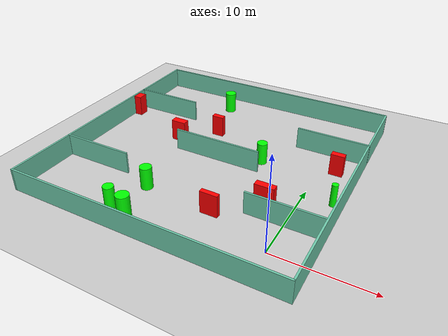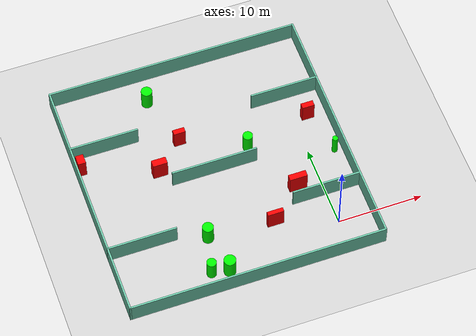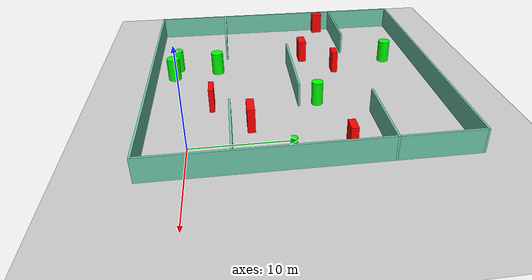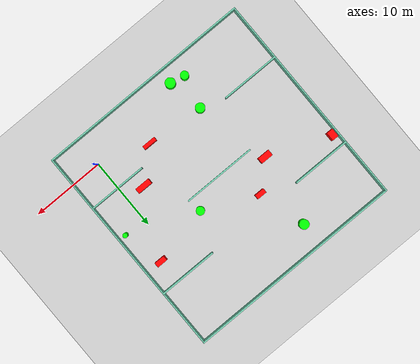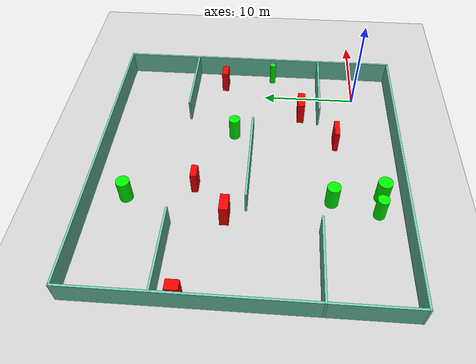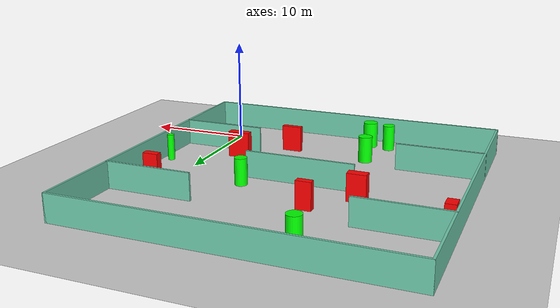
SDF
<sdf version="1.7">
 <world name="default">
  <light name="sun" type="directional">
   <pose>0 0 10 0 -0 0</pose>
   <diffuse>0.8 0.8 0.8 1</diffuse>
   <specular>0.2 0.2 0.2 1</specular>
   <attenuation>
    <range>1000</range>
    <constant>0.9</constant>
    <linear>0.01</linear>
    <quadratic>0.001</quadratic>
   </attenuation>
   <direction>-0.5 0.1 -0.9</direction>
   <spot><inner_angle>0</inner_angle><outer_angle>0</outer_angle><falloff>0</falloff></spot>
  </light>
  <model name="ground_plane">
   <static>1</static>
   <link name="link">
    <collision name="collision">
     <geometry><plane><normal>0 0 1</normal><size>100 100</size></plane></geometry>
     <surface>
      <contact><collide_bitmask>65535</collide_bitmask></contact>
      <friction><ode><mu>100</mu><mu2>50</mu2></ode></friction>
     </surface>
    </collision>
    <visual name="visual">
     <cast_shadows>0</cast_shadows>
     <geometry><plane><normal>0 0 1</normal><size>100 100</size></plane></geometry>
     <material>
      <script><uri>file://media/materials/scripts/gazebo.material</uri><name>Gazebo/Grey</name></script>
     </material>
    </visual>
   </link>
  </model>
  <gravity>0 0 -9.8</gravity>
  <magnetic_field>6e-06 2.3e-05 -4.2e-05</magnetic_field>
  <atmosphere type="adiabatic"/>
  <physics type="ode">
   <max_step_size>0.001</max_step_size>
   <real_time_factor>1</real_time_factor>
   <real_time_update_rate>1000</real_time_update_rate>
  </physics>
  <scene><ambient>0.4 0.4 0.4 1</ambient><background>0.7 0.7 0.7 1</background><shadows>1</shadows></scene>
  <spherical_coordinates>
   <surface_model>EARTH_WGS84</surface_model>
   <latitude_deg>0</latitude_deg>
   <longitude_deg>0</longitude_deg>
   <elevation>0</elevation>
   <heading_deg>0</heading_deg>
  </spherical_coordinates>
  <model name="my_base_walls">
   <link name="Wall_10">
    <collision name="Wall_10_Collision">
     <geometry><box><size>8.2 0.2 2.5</size></box></geometry>
     <pose>0 0 1.25 0 -0 0</pose>
    </collision>
    <visual name="Wall_10_Visual">
     <pose>0 0 1.25 0 -0 0</pose>
     <geometry><box><size>8.2 0.2 2.5</size></box></geometry>
     <material>
      <script><uri>file://media/materials/scripts/gazebo.material</uri><name>Gazebo/Grey</name></script>
      <ambient>0.435294 0.796078 0.67451 1</ambient>
     </material>
     <meta><layer>0</layer></meta>
    </visual>
    <pose>-11 -7 0 0 -0 0</pose>
   </link>
   <link name="Wall_12">
    <collision name="Wall_12_Collision">
     <geometry><box><size>8.2 0.2 2.5</size></box></geometry>
     <pose>0 0 1.25 0 -0 0</pose>
    </collision>
    <visual name="Wall_12_Visual">
     <pose>0 0 1.25 0 -0 0</pose>
     <geometry><box><size>8.2 0.2 2.5</size></box></geometry>
     <material>
      <script><uri>file://media/materials/scripts/gazebo.material</uri><name>Gazebo/Grey</name></script>
      <ambient>0.435294 0.796078 0.67451 1</ambient>
     </material>
     <meta><layer>0</layer></meta>
    </visual>
    <pose>-11 7 0 0 -0 0</pose>
   </link>
   <link name="Wall_14">
    <collision name="Wall_14_Collision">
     <geometry><box><size>8.2 0.2 2.5</size></box></geometry>
     <pose>0 0 1.25 0 -0 0</pose>
    </collision>
    <visual name="Wall_14_Visual">
     <pose>0 0 1.25 0 -0 0</pose>
     <geometry><box><size>8.2 0.2 2.5</size></box></geometry>
     <material>
      <script><uri>file://media/materials/scripts/gazebo.material</uri><name>Gazebo/Grey</name></script>
      <ambient>0.435294 0.796078 0.67451 1</ambient>
     </material>
     <meta><layer>0</layer></meta>
    </visual>
    <pose>11 7 0 0 -0 3.14159</pose>
   </link>
   <link name="Wall_16">
    <collision name="Wall_16_Collision">
     <geometry><box><size>10.2 0.2 2.5</size></box></geometry>
     <pose>0 0 1.25 0 -0 0</pose>
    </collision>
    <visual name="Wall_16_Visual">
     <pose>0 0 1.25 0 -0 0</pose>
     <geometry><box><size>10.2 0.2 2.5</size></box></geometry>
     <material>
      <script><uri>file://media/materials/scripts/gazebo.material</uri><name>Gazebo/Grey</name></script>
      <ambient>0.435294 0.796078 0.67451 1</ambient>
     </material>
     <meta><layer>0</layer></meta>
    </visual>
    <pose>0 0 0 0 -0 3.14159</pose>
   </link>
   <link name="Wall_2">
    <collision name="Wall_2_Collision">
     <geometry><box><size>30.2 0.2 2.5</size></box></geometry>
     <pose>0 0 1.25 0 -0 0</pose>
    </collision>
    <visual name="Wall_2_Visual">
     <pose>0 0 1.25 0 -0 0</pose>
     <geometry><box><size>30.2 0.2 2.5</size></box></geometry>
     <material>
      <script><uri>file://media/materials/scripts/gazebo.material</uri><name>Gazebo/Grey</name></script>
      <ambient>0.435294 0.796078 0.67451 1</ambient>
     </material>
     <meta><layer>0</layer></meta>
    </visual>
    <pose>0 -15 0 0 -0 3.14159</pose>
   </link>
   <link name="Wall_3">
    <collision name="Wall_3_Collision">
     <geometry><box><size>30.2 0.2 2.5</size></box></geometry>
     <pose>0 0 1.25 0 -0 0</pose>
    </collision>
    <visual name="Wall_3_Visual">
     <pose>0 0 1.25 0 -0 0</pose>
     <geometry><box><size>30.2 0.2 2.5</size></box></geometry>
     <material>
      <script><uri>file://media/materials/scripts/gazebo.material</uri><name>Gazebo/Grey</name></script>
      <ambient>0.435294 0.796078 0.67451 1</ambient>
     </material>
     <meta><layer>0</layer></meta>
    </visual>
    <pose>-15 0 0 0 -0 1.5708</pose>
   </link>
   <link name="Wall_4">
    <collision name="Wall_4_Collision">
     <geometry><box><size>30.2 0.2 2.5</size></box></geometry>
     <pose>0 0 1.25 0 -0 0</pose>
    </collision>
    <visual name="Wall_4_Visual">
     <pose>0 0 1.25 0 -0 0</pose>
     <geometry><box><size>30.2 0.2 2.5</size></box></geometry>
     <material>
      <script><uri>file://media/materials/scripts/gazebo.material</uri><name>Gazebo/Grey</name></script>
      <ambient>0.435294 0.796078 0.67451 1</ambient>
     </material>
     <meta><layer>0</layer></meta>
    </visual>
    <pose>0 15 0 0 -0 0</pose>
   </link>
   <link name="Wall_6">
    <collision name="Wall_6_Collision">
     <geometry><box><size>30.2 0.2 2.5</size></box></geometry>
     <pose>0 0 1.25 0 -0 0</pose>
    </collision>
    <visual name="Wall_6_Visual">
     <pose>0 0 1.25 0 -0 0</pose>
     <geometry><box><size>30.2 0.2 2.5</size></box></geometry>
     <material>
      <script><uri>file://media/materials/scripts/gazebo.material</uri><name>Gazebo/Grey</name></script>
      <ambient>0.435294 0.796078 0.67451 1</ambient>
     </material>
     <meta><layer>0</layer></meta>
    </visual>
    <pose>15 0 0 0 -0 1.5708</pose>
   </link>
   <link name="Wall_8">
    <collision name="Wall_8_Collision">
     <geometry><box><size>8.2 0.2 2.5</size></box></geometry>
     <pose>0 0 1.25 0 -0 0</pose>
    </collision>
    <visual name="Wall_8_Visual">
     <pose>0 0 1.25 0 -0 0</pose>
     <geometry><box><size>8.2 0.2 2.5</size></box></geometry>
     <material>
      <script><uri>file://media/materials/scripts/gazebo.material</uri><name>Gazebo/Grey</name></script>
      <ambient>0.435294 0.796078 0.67451 1</ambient>
     </material>
     <meta><layer>0</layer></meta>
    </visual>
    <pose>11 -7 0 0 -0 3.14159</pose>
   </link>
   <static>1</static>
   <pose>-11 11 0 0 -0 0</pose>
  </model>
  <model name="cylinder1">
   <static>1</static>
   <link name="link">
    <inertial>
     <mass>1</mass>
     <inertia><ixx>0.5</ixx><ixy>0</ixy><ixz>0</ixz><iyy>0.5</iyy><iyz>0</iyz><izz>1</izz></inertia>
    </inertial>
    <collision name="collision">
     <geometry><cylinder><radius>0.651693050248279</radius><length>2.5</length></cylinder></geometry>
    </collision>
    <visual name="visual">
     <geometry><cylinder><radius>0.651693050248279</radius><length>2.5</length></cylinder></geometry>
     <material>
      <ambient>0 1 0 1</ambient>
      <diffuse>0 1 0 1</diffuse>
      <specular>0.1 0.1 0.1 1</specular>
      <emissive>0 0 0 0</emissive>
     </material>
    </visual>
   </link>
   <pose>-14.628913734034361 2.882663190983412 1.25 0 0 0</pose>
  </model>
  <model name="cylinder2">
   <static>1</static>
   <link name="link">
    <inertial>
     <mass>1</mass>
     <inertia><ixx>0.5</ixx><ixy>0</ixy><ixz>0</ixz><iyy>0.5</iyy><iyz>0</iyz><izz>1</izz></inertia>
    </inertial>
    <collision name="collision">
     <geometry><cylinder><radius>0.6995673802330262</radius><length>2.5</length></cylinder></geometry>
    </collision>
    <visual name="visual">
     <geometry><cylinder><radius>0.6995673802330262</radius><length>2.5</length></cylinder></geometry>
     <material>
      <ambient>0 1 0 1</ambient>
      <diffuse>0 1 0 1</diffuse>
      <specular>0.1 0.1 0.1 1</specular>
      <emissive>0 0 0 0</emissive>
     </material>
    </visual>
   </link>
   <pose>-13.733005618728415 -1.9505663919543181 1.25 0 0 0</pose>
  </model>
  <model name="cylinder3">
   <static>1</static>
   <link name="link">
    <inertial>
     <mass>1</mass>
     <inertia><ixx>0.5</ixx><ixy>0</ixy><ixz>0</ixz><iyy>0.5</iyy><iyz>0</iyz><izz>1</izz></inertia>
    </inertial>
    <collision name="collision">
     <geometry><cylinder><radius>0.5789817773370258</radius><length>2.5</length></cylinder></geometry>
    </collision>
    <visual name="visual">
     <geometry><cylinder><radius>0.5789817773370258</radius><length>2.5</length></cylinder></geometry>
     <material>
      <ambient>0 1 0 1</ambient>
      <diffuse>0 1 0 1</diffuse>
      <specular>0.1 0.1 0.1 1</specular>
      <emissive>0 0 0 0</emissive>
     </material>
    </visual>
   </link>
   <pose>-6.298263601126859 12.91846494071434 1.25 0 0 0</pose>
  </model>
  <model name="cylinder4">
   <static>1</static>
   <link name="link">
    <inertial>
     <mass>1</mass>
     <inertia><ixx>0.5</ixx><ixy>0</ixy><ixz>0</ixz><iyy>0.5</iyy><iyz>0</iyz><izz>1</izz></inertia>
    </inertial>
    <collision name="collision">
     <geometry><cylinder><radius>0.6549022246921097</radius><length>2.5</length></cylinder></geometry>
    </collision>
    <visual name="visual">
     <geometry><cylinder><radius>0.6549022246921097</radius><length>2.5</length></cylinder></geometry>
     <material>
      <ambient>0 1 0 1</ambient>
      <diffuse>0 1 0 1</diffuse>
      <specular>0.1 0.1 0.1 1</specular>
      <emissive>0 0 0 0</emissive>
     </material>
    </visual>
   </link>
   <pose>-15.291449251221355 22.64745849034312 1.25 0 0 0</pose>
  </model>
  <model name="cylinder5">
   <static>1</static>
   <link name="link">
    <inertial>
     <mass>1</mass>
     <inertia><ixx>0.5</ixx><ixy>0</ixy><ixz>0</ixz><iyy>0.5</iyy><iyz>0</iyz><izz>1</izz></inertia>
    </inertial>
    <collision name="collision">
     <geometry><cylinder><radius>0.32859419332419887</radius><length>2.5</length></cylinder></geometry>
    </collision>
    <visual name="visual">
     <geometry><cylinder><radius>0.32859419332419887</radius><length>2.5</length></cylinder></geometry>
     <material>
      <ambient>0 1 0 1</ambient>
      <diffuse>0 1 0 1</diffuse>
      <specular>0.1 0.1 0.1 1</specular>
      <emissive>0 0 0 0</emissive>
     </material>
    </visual>
   </link>
   <pose>3.0022943521326013 9.218145618807908 1.25 0 0 0</pose>
  </model>
  <model name="cylinder6">
   <static>1</static>
   <link name="link">
    <inertial>
     <mass>1</mass>
     <inertia><ixx>0.5</ixx><ixy>0</ixy><ixz>0</ixz><iyy>0.5</iyy><iyz>0</iyz><izz>1</izz></inertia>
    </inertial>
    <collision name="collision">
     <geometry><cylinder><radius>0.5644499816491417</radius><length>2.5</length></cylinder></geometry>
    </collision>
    <visual name="visual">
     <geometry><cylinder><radius>0.5644499816491417</radius><length>2.5</length></cylinder></geometry>
     <material>
      <ambient>0 1 0 1</ambient>
      <diffuse>0 1 0 1</diffuse>
      <specular>0.1 0.1 0.1 1</specular>
      <emissive>0 0 0 0</emissive>
     </material>
    </visual>
   </link>
   <pose>-15.74323663543935 -1.5482120016225074 1.25 0 0 0</pose>
  </model>
  <model name="box1">
   <static>1</static>
   <link name="link">
    <inertial>
     <mass>1</mass>
     <inertia><ixx>0.083</ixx><ixy>0</ixy><ixz>0</ixz><iyy>0.083</iyy><iyz>0</iyz><izz>0.083</izz></inertia>
    </inertial>
    <collision name="collision">
     <geometry><box><size>0.9255529663084254 1.1994851048751838 2.5</size></box></geometry>
    </collision>
    <visual name="visual">
     <geometry><box><size>0.9255529663084254 1.1994851048751838 2.5</size></box></geometry>
     <material>
      <ambient>1 0 0 1</ambient>
      <diffuse>1 0 0 1</diffuse>
      <specular>0.1 0.1 0.1 1</specular>
      <emissive>0 0 0 0</emissive>
     </material>
    </visual>
    <sensor name="my_contact" type="contact">
     <contact><collision>box_collision</collision><topic>__default_topic__</topic></contact>
    </sensor>
   </link>
   <pose>-25.314859603121402 16.22878480197321 1.25 0 0 0</pose>
  </model>
  <model name="box2">
   <static>1</static>
   <link name="link">
    <inertial>
     <mass>1</mass>
     <inertia><ixx>0.083</ixx><ixy>0</ixy><ixz>0</ixz><iyy>0.083</iyy><iyz>0</iyz><izz>0.083</izz></inertia>
    </inertial>
    <collision name="collision">
     <geometry><box><size>1.909848373433304 0.5142979860302549 2.5</size></box></geometry>
    </collision>
    <visual name="visual">
     <geometry><box><size>1.909848373433304 0.5142979860302549 2.5</size></box></geometry>
     <material>
      <ambient>1 0 0 1</ambient>
      <diffuse>1 0 0 1</diffuse>
      <specular>0.1 0.1 0.1 1</specular>
      <emissive>0 0 0 0</emissive>
     </material>
    </visual>
    <sensor name="my_contact" type="contact">
     <contact><collision>box_collision</collision><topic>__default_topic__</topic></contact>
    </sensor>
   </link>
   <pose>-6.836919652787513 2.243862642018552 1.25 0 0 0</pose>
  </model>
  <model name="box3">
   <static>1</static>
   <link name="link">
    <inertial>
     <mass>1</mass>
     <inertia><ixx>0.083</ixx><ixy>0</ixy><ixz>0</ixz><iyy>0.083</iyy><iyz>0</iyz><izz>0.083</izz></inertia>
    </inertial>
    <collision name="collision">
     <geometry><box><size>1.731468319817965 0.8545546854995323 2.5</size></box></geometry>
    </collision>
    <visual name="visual">
     <geometry><box><size>1.731468319817965 0.8545546854995323 2.5</size></box></geometry>
     <material>
      <ambient>1 0 0 1</ambient>
      <diffuse>1 0 0 1</diffuse>
      <specular>0.1 0.1 0.1 1</specular>
      <emissive>0 0 0 0</emissive>
     </material>
    </visual>
    <sensor name="my_contact" type="contact">
     <contact><collision>box_collision</collision><topic>__default_topic__</topic></contact>
    </sensor>
   </link>
   <pose>-16.9827312528749 12.914033786998868 1.25 0 0 0</pose>
  </model>
  <model name="box4">
   <static>1</static>
   <link name="link">
    <inertial>
     <mass>1</mass>
     <inertia><ixx>0.083</ixx><ixy>0</ixy><ixz>0</ixz><iyy>0.083</iyy><iyz>0</iyz><izz>0.083</izz></inertia>
    </inertial>
    <collision name="collision">
     <geometry><box><size>1.464838075244192 0.689021045650954 2.5</size></box></geometry>
    </collision>
    <visual name="visual">
     <geometry><box><size>1.464838075244192 0.689021045650954 2.5</size></box></geometry>
     <material>
      <ambient>1 0 0 1</ambient>
      <diffuse>1 0 0 1</diffuse>
      <specular>0.1 0.1 0.1 1</specular>
      <emissive>0 0 0 0</emissive>
     </material>
    </visual>
    <sensor name="my_contact" type="contact">
     <contact><collision>box_collision</collision><topic>__default_topic__</topic></contact>
    </sensor>
   </link>
   <pose>1.6553592687852543 14.649595258498913 1.25 0 0 0</pose>
  </model>
  <model name="box5">
   <static>1</static>
   <link name="link">
    <inertial>
     <mass>1</mass>
     <inertia><ixx>0.083</ixx><ixy>0</ixy><ixz>0</ixz><iyy>0.083</iyy><iyz>0</iyz><izz>0.083</izz></inertia>
    </inertial>
    <collision name="collision">
     <geometry><box><size>2.0932441286526613 0.7456152145330422 2.5</size></box></geometry>
    </collision>
    <visual name="visual">
     <geometry><box><size>2.0932441286526613 0.7456152145330422 2.5</size></box></geometry>
     <material>
      <ambient>1 0 0 1</ambient>
      <diffuse>1 0 0 1</diffuse>
      <specular>0.1 0.1 0.1 1</specular>
      <emissive>0 0 0 0</emissive>
     </material>
    </visual>
    <sensor name="my_contact" type="contact">
     <contact><collision>box_collision</collision><topic>__default_topic__</topic></contact>
    </sensor>
   </link>
   <pose>-2.7915382143893197 5.919538873053911 1.25 0 0 0</pose>
  </model>
  <model name="box6">
   <static>1</static>
   <link name="link">
    <inertial>
     <mass>1</mass>
     <inertia><ixx>0.083</ixx><ixy>0</ixy><ixz>0</ixz><iyy>0.083</iyy><iyz>0</iyz><izz>0.083</izz></inertia>
    </inertial>
    <collision name="collision">
     <geometry><box><size>1.3818101785479473 0.6347011952322288 2.5</size></box></geometry>
    </collision>
    <visual name="visual">
     <geometry><box><size>1.3818101785479473 0.6347011952322288 2.5</size></box></geometry>
     <material>
      <ambient>1 0 0 1</ambient>
      <diffuse>1 0 0 1</diffuse>
      <specular>0.1 0.1 0.1 1</specular>
      <emissive>0 0 0 0</emissive>
     </material>
    </visual>
    <sensor name="my_contact" type="contact">
     <contact><collision>box_collision</collision><topic>__default_topic__</topic></contact>
    </sensor>
   </link>
   <pose>-13.52993323466969 16.15004369026271 1.25 0 0 0</pose>
  </model>
 </world>
</sdf>
